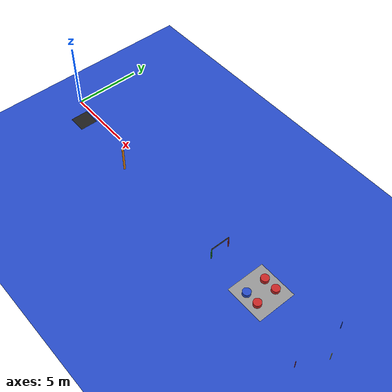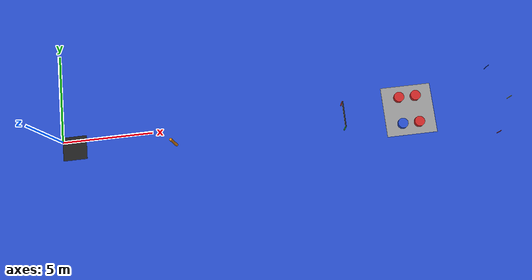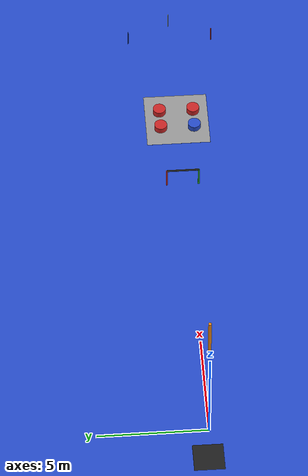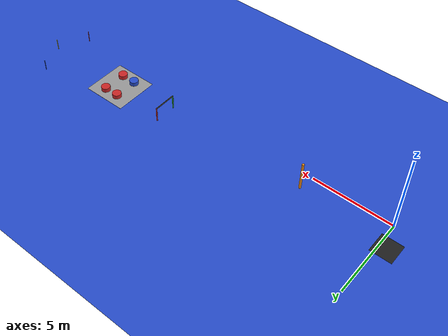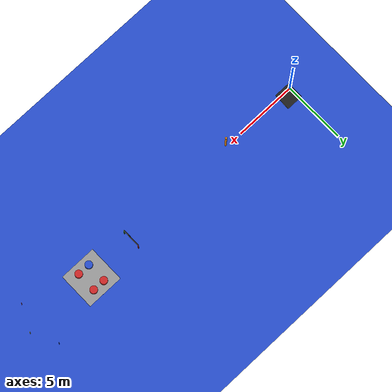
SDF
<?xml version='1.0'?>
<sdf version='1.7'>
  <world name='sauvc_2026_rulebook'>

    <physics name='default_physics' default='true' type='ode'>
      <max_step_size>0.001</max_step_size>
      <real_time_factor>1</real_time_factor>
      <real_time_update_rate>1000</real_time_update_rate>
      <gravity>0 0 0</gravity>
    </physics>

    <scene>
      <ambient>0.4 0.6 0.8 1</ambient>
      <background>0.1 0.2 0.4 1</background>
      <shadows>1</shadows>
      <fog>
        <color>0.1 0.35 0.5 1</color>
        <type>linear</type>
        <start>1.0</start>
        <end>40.0</end>
        <density>0.06</density>
      </fog>
    </scene>

    <light name='sun' type='directional'>
      <cast_shadows>1</cast_shadows>
      <pose>0 0 10 0 -0 0</pose>
      <diffuse>0.8 0.9 1.0 1</diffuse>
      <specular>0.2 0.2 0.2 1</specular>
      <direction>-0.1 0.1 -0.9</direction>
    </light>

    <model name='pool_floor'>
      <static>1</static>
      <pose>25 0 -2 0 0 0</pose>
      <link name='link'>
        <collision name='collision'>
          <geometry><plane><normal>0 0 1</normal><size>60 25</size></plane></geometry>
        </collision>
        <visual name='visual'>
          <geometry><plane><normal>0 0 1</normal><size>60 25</size></plane></geometry>
          <material><script><name>Gazebo/Blue</name></script></material>
        </visual>
      </link>
    </model>

    <model name='start_zone'>
      <static>1</static>
      <pose>0 0 -1.99 0 0 0</pose>
      <link name='link'>
        <visual name='visual'>
          <geometry><plane><normal>0 0 1</normal><size>1.4 1.4</size></plane></geometry>
          <material><script><name>Gazebo/Black</name></script></material>
        </visual>
      </link>
    </model>

    <model name='flare_orange_obstacle'>
      <pose>6.0 -0.5 -1.0 0 0 0</pose>
      <static>1</static>
      <link name='link'>
        <visual name='visual'>
          <geometry><cylinder><radius>0.075</radius> <length>2.0</length></cylinder></geometry>
          <material><script><name>Gazebo/Orange</name></script></material>
        </visual>
        <collision name='collision'>
          <geometry><cylinder><radius>0.075</radius> <length>2.0</length></cylinder></geometry>
        </collision>
      </link>
    </model>

    <model name='gate_rulebook'>
      <pose>16.0 0 -1.5 0 0 0</pose> <static>1</static>

      <link name='left_post'>
        <pose>0 0.75 0 0 0 0</pose>
        <visual name='visual'>
          <geometry><cylinder><radius>0.04</radius> <length>1.0</length></cylinder></geometry>
          <material><script><name>Gazebo/Red</name></script></material>
        </visual>
        <collision name='collision'><geometry><cylinder><radius>0.04</radius> <length>1.0</length></cylinder></geometry></collision>
      </link>

      <link name='right_post'>
        <pose>0 -0.75 0 0 0 0</pose>
        <visual name='visual'>
          <geometry><cylinder><radius>0.04</radius> <length>1.0</length></cylinder></geometry>
          <material><script><name>Gazebo/Green</name></script></material>
        </visual>
        <collision name='collision'><geometry><cylinder><radius>0.04</radius> <length>1.0</length></cylinder></geometry></collision>
      </link>

      <link name='top_bar'>
        <pose>0 0 0.5 1.5708 0 0</pose>
        <visual name='visual'>
          <geometry><cylinder><radius>0.04</radius> <length>1.5</length></cylinder></geometry>
          <material><script><name>Gazebo/Black</name></script></material>
        </visual>
      </link>
    </model>

    <model name='bucket_mat'>
      <static>1</static>
      <pose>20.0 0 -1.99 0 0 0</pose>
      <link name='link'>
        <visual name='visual'>
          <geometry><plane><normal>0 0 1</normal><size>3.0 3.0</size></plane></geometry>
          <material><script><name>Gazebo/Grey</name></script></material>
        </visual>
      </link>
    </model>

    <model name='drum_blue'>
      <static>1</static>
      <pose>19.5 -0.8 -1.85 0 0 0</pose> <link name='link'>
        <visual name='visual'>
          <geometry><cylinder><radius>0.3</radius><length>0.3</length></cylinder></geometry>
          <material><script><name>Gazebo/Blue</name></script></material>
        </visual>
      </link>
    </model>

    <model name='drum_red_1'>
      <static>1</static>
      <pose>20.5 0.8 -1.85 0 0 0</pose>
      <link name='link'>
        <visual name='visual'>
          <geometry><cylinder><radius>0.3</radius><length>0.3</length></cylinder></geometry>
          <material><script><name>Gazebo/Red</name></script></material>
        </visual>
      </link>
    </model>

    <model name='drum_red_2'>
      <static>1</static>
      <pose>20.5 -0.8 -1.85 0 0 0</pose>
      <link name='link'>
        <visual name='visual'>
          <geometry><cylinder><radius>0.3</radius><length>0.3</length></cylinder></geometry>
          <material><script><name>Gazebo/Red</name></script></material>
        </visual>
      </link>
    </model>

    <model name='drum_red_3'>
      <static>1</static>
      <pose>19.5 0.8 -1.85 0 0 0</pose>
      <link name='link'>
        <visual name='visual'>
          <geometry><cylinder><radius>0.3</radius><length>0.3</length></cylinder></geometry>
          <material><script><name>Gazebo/Red</name></script></material>
        </visual>
      </link>
    </model>

    <model name='flare_target_red'>
      <pose>25.0 -2.0 -1.6 0 0 0</pose> <static>1</static>
      <link name='link'>
        <visual name='visual'>
          <geometry><cylinder><radius>0.02</radius> <length>0.8</length></cylinder></geometry>
          <material><script><name>Gazebo/Red</name></script></material>
        </visual>
      </link>
    </model>

    <model name='flare_target_yellow'>
      <pose>26.0 0.0 -1.6 0 0 0</pose>
      <static>1</static>
      <link name='link'>
        <visual name='visual'>
          <geometry><cylinder><radius>0.02</radius> <length>0.8</length></cylinder></geometry>
          <material><script><name>Gazebo/Yellow</name></script></material>
        </visual>
      </link>
    </model>

    <model name='flare_target_blue'>
      <pose>25.0 2.0 -1.6 0 0 0</pose>
      <static>1</static>
      <link name='link'>
        <visual name='visual'>
          <geometry><cylinder><radius>0.02</radius> <length>0.8</length></cylinder></geometry>
          <material><script><name>Gazebo/Blue</name></script></material>
        </visual>
      </link>
    </model>

  </world>
</sdf>
